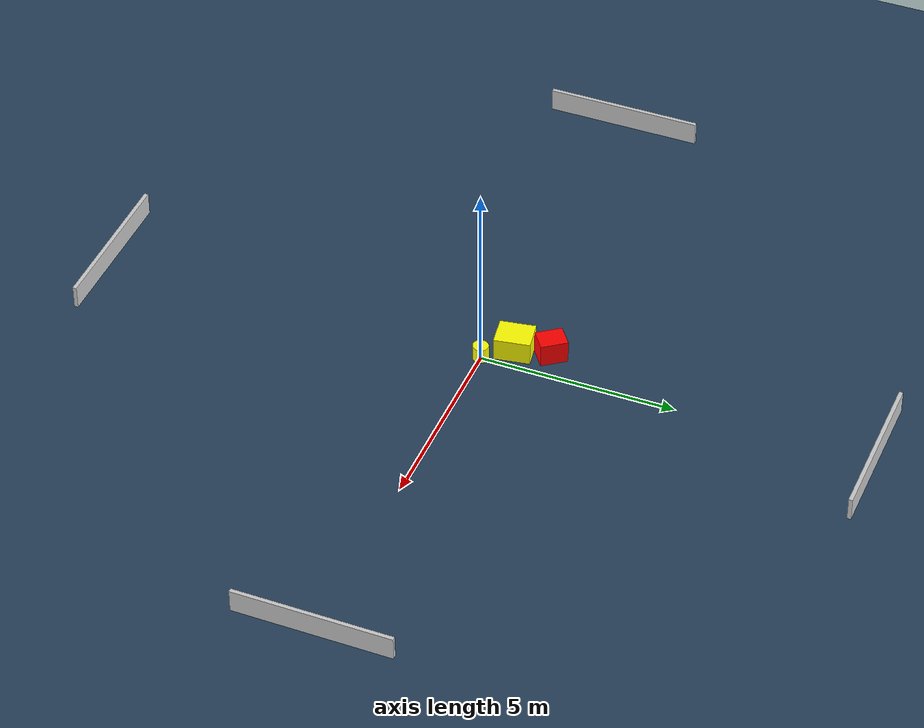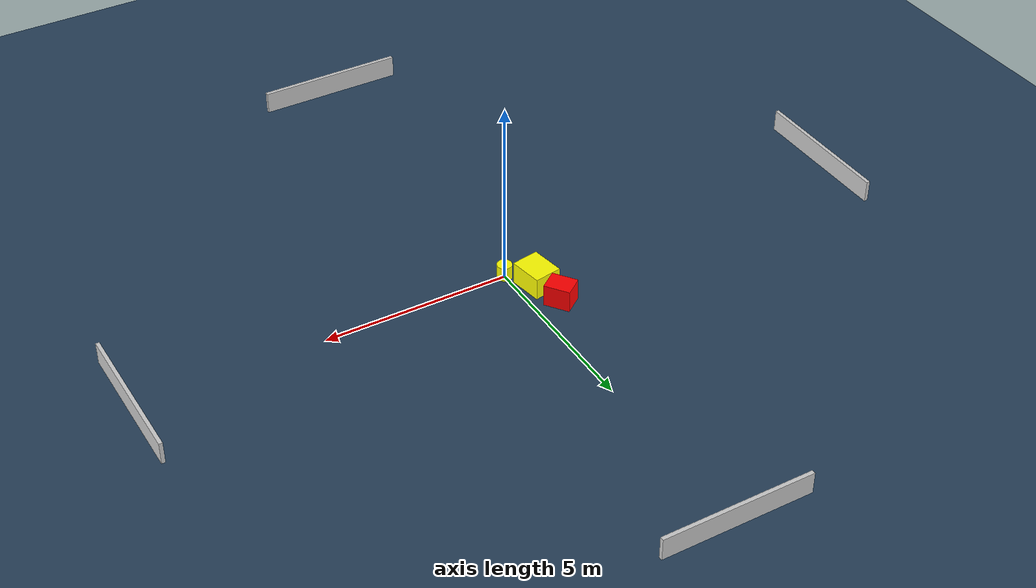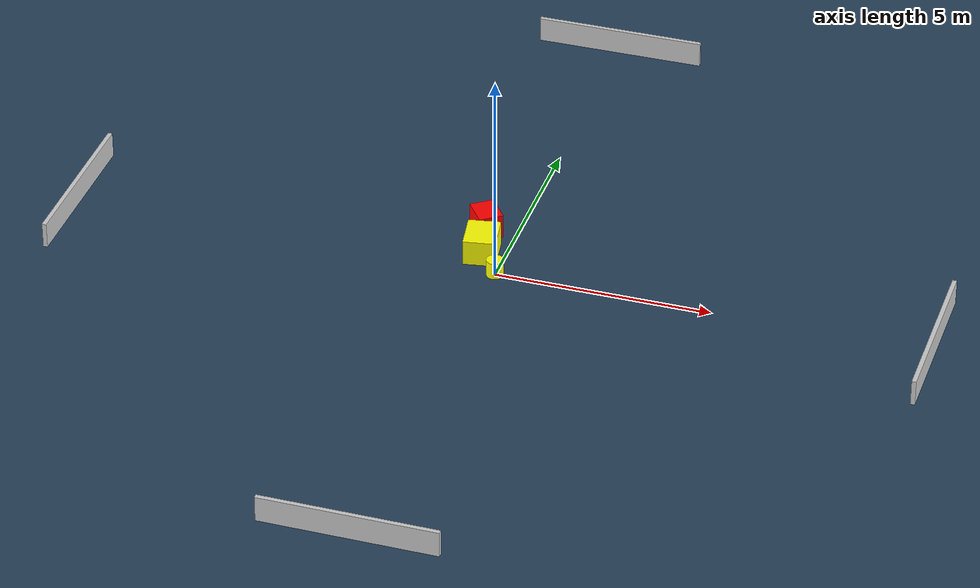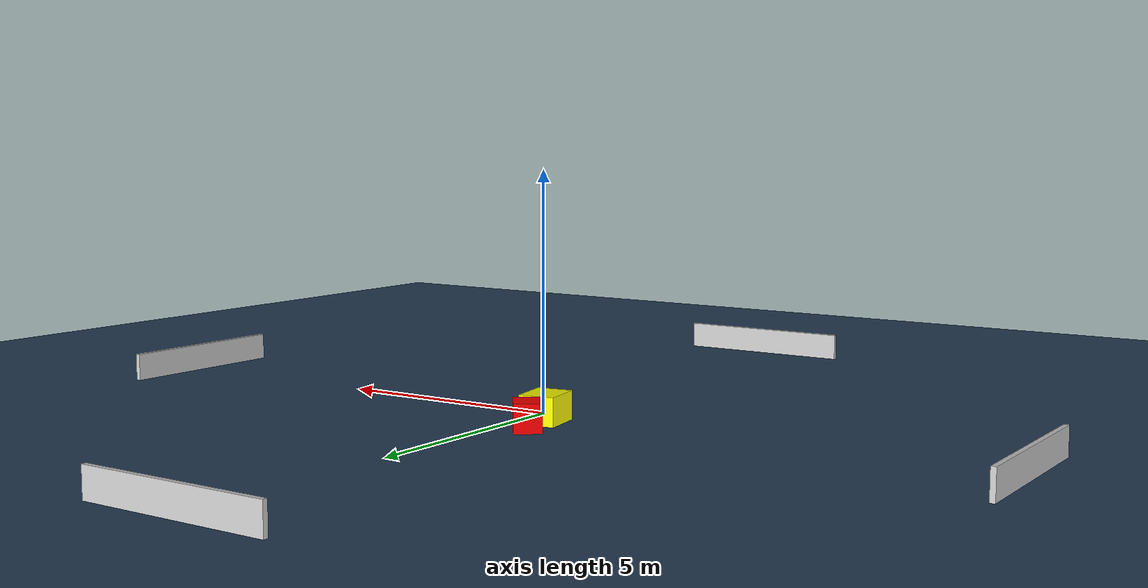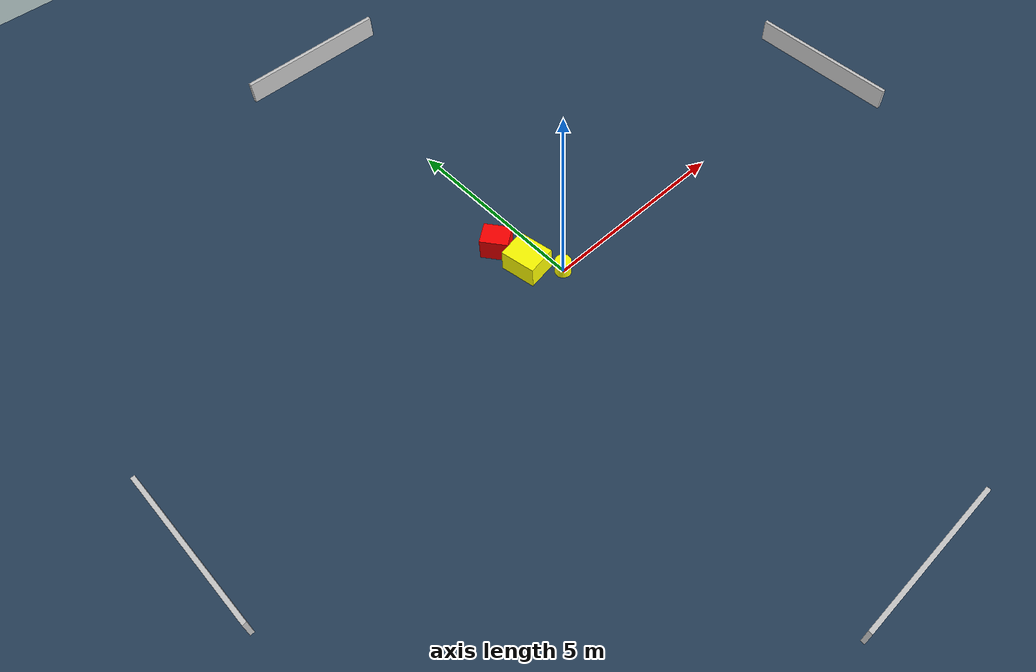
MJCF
<?xml version="1.0" ?>
<mujoco model="generated_environment">
  <option timestep="0.01" integrator="RK4" cone="elliptic"/>
  <default>
    <geom density="1"/>
  </default>
  <asset>
    <texture builtin="gradient" height="3072" name="skybox" rgb1="0.3 0.5 0.7" rgb2="0 0 0" type="skybox" width="512"/>
    <texture builtin="checker" height="300" name="groundplane" rgb1="0.2 0.3 0.4" rgb2="0.1 0.2 0.3" type="2d" width="300"/>
    <material name="groundplane" reflectance="0.2" texrepeat="5 5" texture="groundplane"/>
  </asset>
  <worldbody>
    <light dir="0 0 -1" directional="true" pos="0 0 1.5"/>
    <geom condim="3" friction="0.5 0.005 0.001" material="groundplane" name="floor" pos="0 0 0" size="0 0 0.05" type="plane"/>
    <body name="walls">
      <geom name="wall_1" condim="4" pos="-10.0 0.0 0.3" rgba="0.800000011920929 0.800000011920929 0.800000011920929 1.0" size="0.05 2.0 0.3" type="box"/>
      <geom name="wall_2" condim="4" pos="10.0 0.0 0.3" rgba="0.800000011920929 0.800000011920929 0.800000011920929 1.0" size="0.05 2.0 0.3" type="box"/>
      <geom name="wall_3" condim="4" pos="0.0 -10.0 0.3" rgba="0.800000011920929 0.800000011920929 0.800000011920929 1.0" size="2.0 0.05 0.3" type="box"/>
      <geom name="wall_4" condim="4" pos="0.0 10.0 0.3" rgba="0.800000011920929 0.800000011920929 0.800000011920929 1.0" size="2.0 0.05 0.3" type="box"/>
    </body>
    <body name="robot">
      <joint name="joint_x" type="slide" pos="0 0 0" axis="1 0 0"/>
      <joint name="joint_y" type="slide" pos="0 0 0" axis="0 1 0"/>
      <geom name="robot" type="cylinder" pos="0.0 0.0 0.2" size="0.2 0.2 0.0" mass="5.0" friction="1.0 0.005 0.0001" condim="4" rgba="1.0 1.0 0.0 1.0"/>
    </body>
    <body name="obstacle_1_movable">
      <geom name="obstacle_1_movable" condim="4" pos="-0.5250966425581624 0.6841639370339111 0.3" euler="0 0 9.494524417083966" friction="0.0 0.005 0.001" rgba="1.0 1.0 0.0 1.0" size="0.37194351800747716 0.45377265742525813 0.3" type="box" mass="0.1"/>
      <joint type="free"/>
    </body>
    <body name="obstacle_2_static">
      <geom name="obstacle_2_static" condim="4" pos="-0.7001861165576999 1.5695112293033062 0.3" euler="0 0 306.4253661880757" friction="0.0 0.005 0.001" rgba="1.0 0.0 0.0 1.0" size="0.3467630928186388 0.28236874825451047 0.3" type="box"/>
    </body>
  </worldbody>
  <actuator>
    <motor name="actuator_x" joint="joint_x" gear="1" ctrlrange="-1 1"/>
    <motor name="actuator_y" joint="joint_y" gear="1" ctrlrange="-1 1"/>
  </actuator>
</mujoco>
